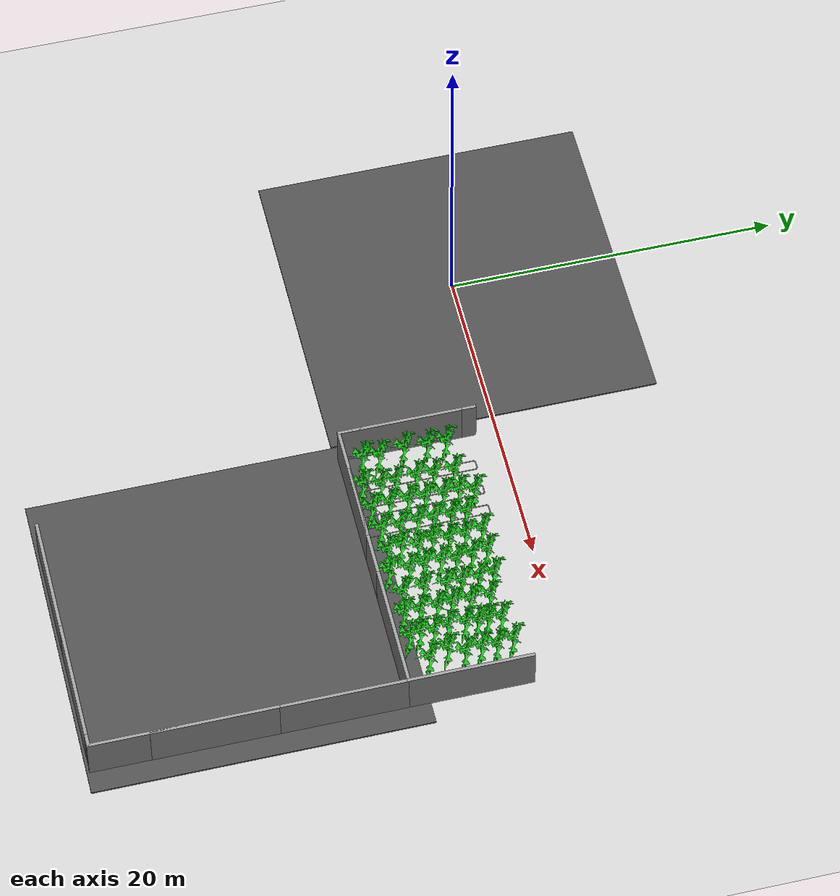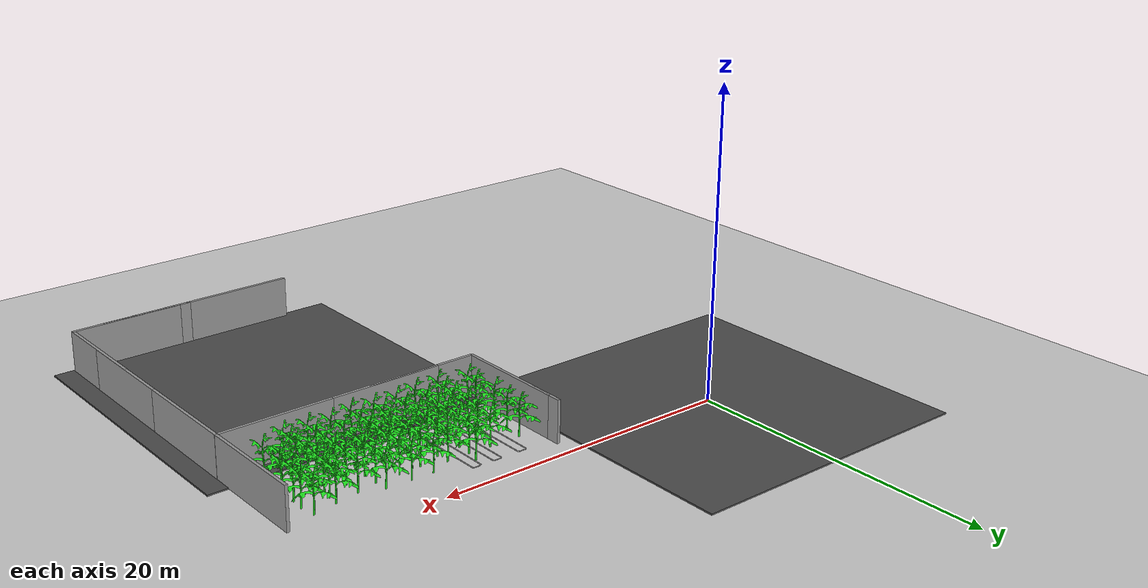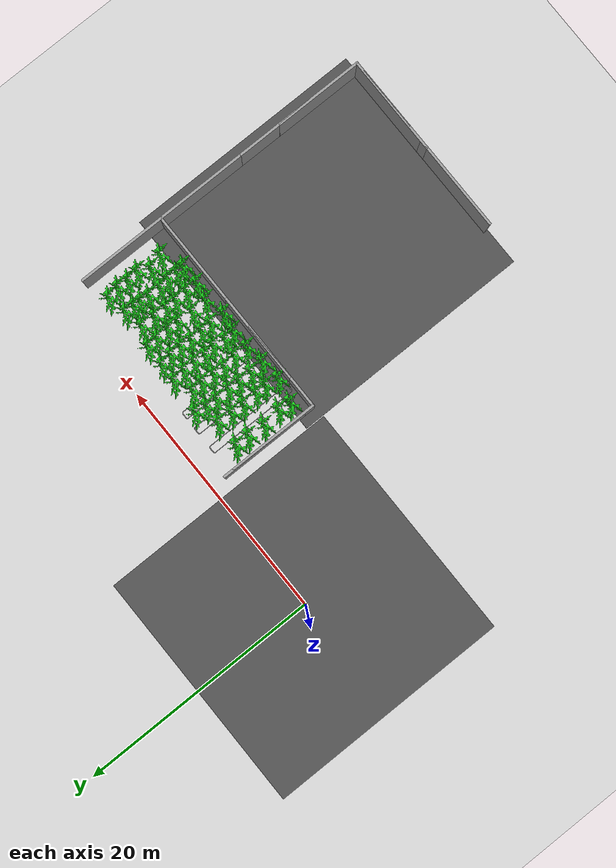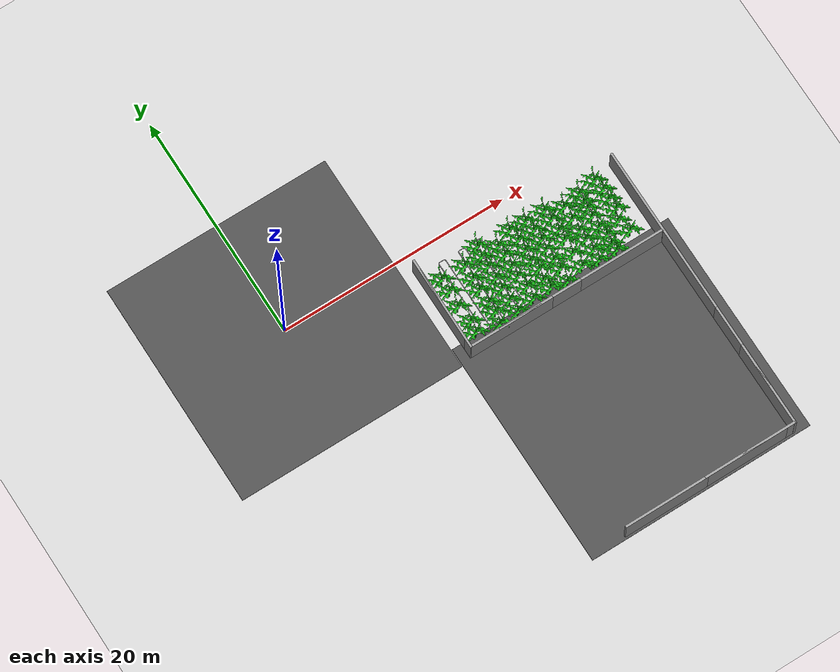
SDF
<sdf version="1.7">
 <world name="default">
  <model name="ground_plane">
   <static>1</static>
   <link name="link">
    <collision name="collision">
     <geometry><plane><normal>0 0 1</normal><size>100 100</size></plane></geometry>
     <surface><friction><ode><mu>100</mu><mu2>50</mu2></ode></friction></surface>
    </collision>
    <visual name="visual">
     <cast_shadows>0</cast_shadows>
     <geometry><plane><normal>0 0 1</normal><size>100 100</size></plane></geometry>
     <material>
      <script><uri>file://media/materials/scripts/gazebo.material</uri><name>Gazebo/Grey</name></script>
     </material>
    </visual>
   </link>
  </model>
  <model name="grey_wall_clone_clone_0_clone">
   <static>1</static>
   <link name="link">
    <pose>0 0 1.4 0 -0 0</pose>
    <collision name="collision"><geometry><box><size>7.5 0.2 2.8</size></box></geometry></collision>
    <visual name="visual">
     <cast_shadows>0</cast_shadows>
     <geometry><box><size>7.5 0.2 2.8</size></box></geometry>
     <material>
      <script>
       <uri>model://grey_wall/materials/scripts</uri>
       <uri>model://grey_wall/materials/textures</uri>
       <name>vrc/grey_wall</name>
      </script>
     </material>
    </visual>
   </link>
   <pose>11 -5.87182 0 0 -0 1.57</pose>
  </model>
  <model name="asphalt_plane">
   <static>1</static>
   <link name="link">
    <collision name="collision"><geometry><box><size>20 20 0.1</size></box></geometry></collision>
    <visual name="visual">
     <cast_shadows>0</cast_shadows>
     <geometry><box><size>20 20 0.1</size></box></geometry>
     <material>
      <script>
       <uri>model://asphalt_plane/materials/scripts</uri>
       <uri>model://asphalt_plane/materials/textures</uri>
       <name>vrc/asphalt</name>
      </script>
     </material>
    </visual>
   </link>
   <pose>0.007662 0.157905 0 0 -0 0</pose>
  </model>
  <model name="asphalt_plane_clone_clone_1">
   <static>1</static>
   <link name="link">
    <collision name="collision"><geometry><box><size>20 20 0.1</size></box></geometry></collision>
    <visual name="visual">
     <cast_shadows>0</cast_shadows>
     <geometry><box><size>20 20 0.1</size></box></geometry>
     <material>
      <script>
       <uri>model://asphalt_plane/materials/scripts</uri>
       <uri>model://asphalt_plane/materials/textures</uri>
       <name>vrc/asphalt</name>
      </script>
     </material>
    </visual>
   </link>
   <pose>20.0847 -18.2729 0 0 -0 0</pose>
  </model>
  <model name="grey_wall_clone_clone_0_clone_clone">
   <static>1</static>
   <link name="link">
    <pose>0 0 1.4 0 -0 0</pose>
    <collision name="collision"><geometry><box><size>7.5 0.2 2.8</size></box></geometry></collision>
    <visual name="visual">
     <cast_shadows>0</cast_shadows>
     <geometry><box><size>7.5 0.2 2.8</size></box></geometry>
     <material>
      <script>
       <uri>model://grey_wall/materials/scripts</uri>
       <uri>model://grey_wall/materials/textures</uri>
       <name>vrc/grey_wall</name>
      </script>
     </material>
    </visual>
   </link>
   <pose>11 -4.99972 0 0 -0 1.57</pose>
  </model>
  <model name="grey_wall_clone_0_clone">
   <static>1</static>
   <link name="link">
    <pose>0 0 1.4 0 -0 0</pose>
    <collision name="collision"><geometry><box><size>7.5 0.2 2.8</size></box></geometry></collision>
    <visual name="visual">
     <cast_shadows>0</cast_shadows>
     <geometry><box><size>7.5 0.2 2.8</size></box></geometry>
     <material>
      <script>
       <uri>model://grey_wall/materials/scripts</uri>
       <uri>model://grey_wall/materials/textures</uri>
       <name>vrc/grey_wall</name>
      </script>
     </material>
    </visual>
   </link>
   <pose>17.3384 -9.5385 0 0 -0 0</pose>
  </model>
  <model name="grey_wall_clone_0_clone_0">
   <static>1</static>
   <link name="link">
    <pose>0 0 1.4 0 -0 0</pose>
    <collision name="collision"><geometry><box><size>7.5 0.2 2.8</size></box></geometry></collision>
    <visual name="visual">
     <cast_shadows>0</cast_shadows>
     <geometry><box><size>7.5 0.2 2.8</size></box></geometry>
     <material>
      <script>
       <uri>model://grey_wall/materials/scripts</uri>
       <uri>model://grey_wall/materials/textures</uri>
       <name>vrc/grey_wall</name>
      </script>
     </material>
    </visual>
   </link>
   <pose>24.8378 -9.53529 0 0 -0 0</pose>
  </model>
  <model name="grey_wall_clone_clone_1_clone_0">
   <static>1</static>
   <link name="link">
    <pose>0 0 1.4 0 -0 0</pose>
    <collision name="collision"><geometry><box><size>7.5 0.2 2.8</size></box></geometry></collision>
    <visual name="visual">
     <cast_shadows>0</cast_shadows>
     <geometry><box><size>7.5 0.2 2.8</size></box></geometry>
     <material>
      <script>
       <uri>model://grey_wall/materials/scripts</uri>
       <uri>model://grey_wall/materials/textures</uri>
       <name>vrc/grey_wall</name>
      </script>
     </material>
    </visual>
   </link>
   <pose>28.6745 -5.89727 0 0 -0 1.57</pose>
  </model>
  <model name="piperail_clone_7_clone">
   <static>1</static>
   <link name="link">
    <collision name="collision">
     <geometry>
      <mesh><scale>0.001 0.001 0.001</scale><uri>model://piperail/meshes/piperail.STL</uri></mesh>
     </geometry>
    </collision>
    <visual name="visual">
     <geometry>
      <mesh><scale>0.001 0.001 0.001</scale><uri>model://piperail/meshes/piperail.STL</uri></mesh>
     </geometry>
    </visual>
   </link>
   <pose>14.7467 -1.74353 0.050452 1.57 -0 0</pose>
  </model>
  <model name="piperail_clone_7_clone_clone">
   <static>1</static>
   <link name="link">
    <collision name="collision">
     <geometry>
      <mesh><scale>0.001 0.001 0.001</scale><uri>model://piperail/meshes/piperail.STL</uri></mesh>
     </geometry>
    </collision>
    <visual name="visual">
     <geometry>
      <mesh><scale>0.001 0.001 0.001</scale><uri>model://piperail/meshes/piperail.STL</uri></mesh>
     </geometry>
    </visual>
   </link>
   <pose>16.1968 -1.75848 0.050452 1.57 -0 0</pose>
  </model>
  <model name="plant_clone_1_clone_23_clone">
   <static>1</static>
   <link name="link">
    <visual name="visual">
     <geometry><mesh><scale>0.01 0.01 0.01</scale><uri>model://plant/meshes/plant.STL</uri></mesh></geometry>
     <material>
      <ambient>0.1 0.8 0.1 1</ambient>
      <diffuse>0.1 0.8 0.1 1</diffuse>
      <specular>0.01 0.01 0.01 1</specular>
      <emissive>0 0 0 1</emissive>
     </material>
    </visual>
   </link>
   <pose>15.0345 -1.71832 0.000845 1.57 -0 0</pose>
  </model>
  <model name="plant_clone_1_clone_23_clone_clone">
   <static>1</static>
   <link name="link">
    <visual name="visual">
     <geometry><mesh><scale>0.01 0.01 0.01</scale><uri>model://plant/meshes/plant.STL</uri></mesh></geometry>
     <material>
      <ambient>0.1 0.8 0.1 1</ambient>
      <diffuse>0.1 0.8 0.1 1</diffuse>
      <specular>0.01 0.01 0.01 1</specular>
      <emissive>0 0 0 1</emissive>
     </material>
    </visual>
   </link>
   <pose>14.8347 -2.63228 0.000845 1.57 -0 0</pose>
  </model>
  <model name="plant_clone_1_clone_23_clone_clone_0">
   <static>1</static>
   <link name="link">
    <visual name="visual">
     <geometry><mesh><scale>0.01 0.01 0.01</scale><uri>model://plant/meshes/plant.STL</uri></mesh></geometry>
     <material>
      <ambient>0.1 0.8 0.1 1</ambient>
      <diffuse>0.1 0.8 0.1 1</diffuse>
      <specular>0.01 0.01 0.01 1</specular>
      <emissive>0 0 0 1</emissive>
     </material>
    </visual>
   </link>
   <pose>14.8072 -3.55643 0.000845 1.57 -0 0</pose>
  </model>
  <model name="plant_clone_1_clone_23_clone_clone_1">
   <static>1</static>
   <link name="link">
    <visual name="visual">
     <geometry><mesh><scale>0.01 0.01 0.01</scale><uri>model://plant/meshes/plant.STL</uri></mesh></geometry>
     <material>
      <ambient>0.1 0.8 0.1 1</ambient>
      <diffuse>0.1 0.8 0.1 1</diffuse>
      <specular>0.01 0.01 0.01 1</specular>
      <emissive>0 0 0 1</emissive>
     </material>
    </visual>
   </link>
   <pose>14.835 -4.67489 0.000845 1.57 -0 0</pose>
  </model>
  <model name="plant_clone_1_clone_23_clone_clone_2">
   <static>1</static>
   <link name="link">
    <visual name="visual">
     <geometry><mesh><scale>0.01 0.01 0.01</scale><uri>model://plant/meshes/plant.STL</uri></mesh></geometry>
     <material>
      <ambient>0.1 0.8 0.1 1</ambient>
      <diffuse>0.1 0.8 0.1 1</diffuse>
      <specular>0.01 0.01 0.01 1</specular>
      <emissive>0 0 0 1</emissive>
     </material>
    </visual>
   </link>
   <pose>14.7605 -5.65428 0.000845 1.57 -0 0</pose>
  </model>
  <model name="plant_clone_1_clone_23_clone_clone_3">
   <static>1</static>
   <link name="link">
    <visual name="visual">
     <geometry><mesh><scale>0.01 0.01 0.01</scale><uri>model://plant/meshes/plant.STL</uri></mesh></geometry>
     <material>
      <ambient>0.1 0.8 0.1 1</ambient>
      <diffuse>0.1 0.8 0.1 1</diffuse>
      <specular>0.01 0.01 0.01 1</specular>
      <emissive>0 0 0 1</emissive>
     </material>
    </visual>
   </link>
   <pose>14.7672 -6.76968 0.000845 1.57 -0 0</pose>
  </model>
  <model name="plant_clone_1_clone_23_clone_clone_4">
   <static>1</static>
   <link name="link">
    <visual name="visual">
     <geometry><mesh><scale>0.01 0.01 0.01</scale><uri>model://plant/meshes/plant.STL</uri></mesh></geometry>
     <material>
      <ambient>0.1 0.8 0.1 1</ambient>
      <diffuse>0.1 0.8 0.1 1</diffuse>
      <specular>0.01 0.01 0.01 1</specular>
      <emissive>0 0 0 1</emissive>
     </material>
    </visual>
   </link>
   <pose>14.8508 -7.86735 0.000845 1.57 -0 0</pose>
  </model>
  <model name="plant_clone_1_clone_23_clone_clone_5">
   <static>1</static>
   <link name="link">
    <visual name="visual">
     <geometry><mesh><scale>0.01 0.01 0.01</scale><uri>model://plant/meshes/plant.STL</uri></mesh></geometry>
     <material>
      <ambient>0.1 0.8 0.1 1</ambient>
      <diffuse>0.1 0.8 0.1 1</diffuse>
      <specular>0.01 0.01 0.01 1</specular>
      <emissive>0 0 0 1</emissive>
     </material>
    </visual>
   </link>
   <pose>13.1094 -7.99755 0.000845 1.57 -0 0</pose>
  </model>
  <model name="plant_clone_1_clone_23_clone_clone_6">
   <static>1</static>
   <link name="link">
    <visual name="visual">
     <geometry><mesh><scale>0.01 0.01 0.01</scale><uri>model://plant/meshes/plant.STL</uri></mesh></geometry>
     <material>
      <ambient>0.1 0.8 0.1 1</ambient>
      <diffuse>0.1 0.8 0.1 1</diffuse>
      <specular>0.01 0.01 0.01 1</specular>
      <emissive>0 0 0 1</emissive>
     </material>
    </visual>
   </link>
   <pose>13.3355 -6.95268 0.000845 1.57 -0 0</pose>
  </model>
  <model name="plant_clone_1_clone_23_clone_clone_7">
   <static>1</static>
   <link name="link">
    <visual name="visual">
     <geometry><mesh><scale>0.01 0.01 0.01</scale><uri>model://plant/meshes/plant.STL</uri></mesh></geometry>
     <material>
      <ambient>0.1 0.8 0.1 1</ambient>
      <diffuse>0.1 0.8 0.1 1</diffuse>
      <specular>0.01 0.01 0.01 1</specular>
      <emissive>0 0 0 1</emissive>
     </material>
    </visual>
   </link>
   <pose>13.3093 -6.07637 0.000845 1.57 -0 0</pose>
  </model>
  <model name="plant_clone_1_clone_23_clone_clone_8">
   <static>1</static>
   <link name="link">
    <visual name="visual">
     <geometry><mesh><scale>0.01 0.01 0.01</scale><uri>model://plant/meshes/plant.STL</uri></mesh></geometry>
     <material>
      <ambient>0.1 0.8 0.1 1</ambient>
      <diffuse>0.1 0.8 0.1 1</diffuse>
      <specular>0.01 0.01 0.01 1</specular>
      <emissive>0 0 0 1</emissive>
     </material>
    </visual>
   </link>
   <pose>13.2413 -4.81861 0.000845 1.57 -0 0</pose>
  </model>
  <model name="plant_clone_1_clone_23_clone_clone_9">
   <static>1</static>
   <link name="link">
    <visual name="visual">
     <geometry><mesh><scale>0.01 0.01 0.01</scale><uri>model://plant/meshes/plant.STL</uri></mesh></geometry>
     <material>
      <ambient>0.1 0.8 0.1 1</ambient>
      <diffuse>0.1 0.8 0.1 1</diffuse>
      <specular>0.01 0.01 0.01 1</specular>
      <emissive>0 0 0 1</emissive>
     </material>
    </visual>
   </link>
   <pose>13.3188 -3.77274 0.000845 1.57 -0 0</pose>
  </model>
  <model name="plant_clone_1_clone_23_clone_clone_10">
   <static>1</static>
   <link name="link">
    <visual name="visual">
     <geometry><mesh><scale>0.01 0.01 0.01</scale><uri>model://plant/meshes/plant.STL</uri></mesh></geometry>
     <material>
      <ambient>0.1 0.8 0.1 1</ambient>
      <diffuse>0.1 0.8 0.1 1</diffuse>
      <specular>0.01 0.01 0.01 1</specular>
      <emissive>0 0 0 1</emissive>
     </material>
    </visual>
   </link>
   <pose>13.3512 -2.55248 0.000845 1.57 -0 0</pose>
  </model>
  <model name="plant_clone_1_clone_23_clone_clone_13">
   <static>1</static>
   <link name="link">
    <visual name="visual">
     <geometry><mesh><scale>0.01 0.01 0.01</scale><uri>model://plant/meshes/plant.STL</uri></mesh></geometry>
     <material>
      <ambient>0.1 0.8 0.1 1</ambient>
      <diffuse>0.1 0.8 0.1 1</diffuse>
      <specular>0.01 0.01 0.01 1</specular>
      <emissive>0 0 0 1</emissive>
     </material>
    </visual>
   </link>
   <pose>16.3811 -2.58962 0.000845 1.57 -0 0</pose>
  </model>
  <model name="plant_clone_1_clone_23_clone_clone_14">
   <static>1</static>
   <link name="link">
    <visual name="visual">
     <geometry><mesh><scale>0.01 0.01 0.01</scale><uri>model://plant/meshes/plant.STL</uri></mesh></geometry>
     <material>
      <ambient>0.1 0.8 0.1 1</ambient>
      <diffuse>0.1 0.8 0.1 1</diffuse>
      <specular>0.01 0.01 0.01 1</specular>
      <emissive>0 0 0 1</emissive>
     </material>
    </visual>
   </link>
   <pose>16.438 -3.48412 0.000845 1.57 -0 0</pose>
  </model>
  <model name="plant_clone_1_clone_23_clone_clone_15">
   <static>1</static>
   <link name="link">
    <visual name="visual">
     <geometry><mesh><scale>0.01 0.01 0.01</scale><uri>model://plant/meshes/plant.STL</uri></mesh></geometry>
     <material>
      <ambient>0.1 0.8 0.1 1</ambient>
      <diffuse>0.1 0.8 0.1 1</diffuse>
      <specular>0.01 0.01 0.01 1</specular>
      <emissive>0 0 0 1</emissive>
     </material>
    </visual>
   </link>
   <pose>16.3862 -4.54463 0.000845 1.57 -0 0</pose>
  </model>
  <model name="plant_clone_1_clone_23_clone_clone_16">
   <static>1</static>
   <link name="link">
    <visual name="visual">
     <geometry><mesh><scale>0.01 0.01 0.01</scale><uri>model://plant/meshes/plant.STL</uri></mesh></geometry>
     <material>
      <ambient>0.1 0.8 0.1 1</ambient>
      <diffuse>0.1 0.8 0.1 1</diffuse>
      <specular>0.01 0.01 0.01 1</specular>
      <emissive>0 0 0 1</emissive>
     </material>
    </visual>
   </link>
   <pose>16.3138 -5.47548 0.000845 1.57 -0 0</pose>
  </model>
  <model name="plant_clone_1_clone_23_clone_clone_17">
   <static>1</static>
   <link name="link">
    <visual name="visual">
     <geometry><mesh><scale>0.01 0.01 0.01</scale><uri>model://plant/meshes/plant.STL</uri></mesh></geometry>
     <material>
      <ambient>0.1 0.8 0.1 1</ambient>
      <diffuse>0.1 0.8 0.1 1</diffuse>
      <specular>0.01 0.01 0.01 1</specular>
      <emissive>0 0 0 1</emissive>
     </material>
    </visual>
   </link>
   <pose>16.4837 -6.56236 0.000845 1.57 -0 0</pose>
  </model>
  <model name="plant_clone_1_clone_23_clone_clone_18">
   <static>1</static>
   <link name="link">
    <visual name="visual">
     <geometry><mesh><scale>0.01 0.01 0.01</scale><uri>model://plant/meshes/plant.STL</uri></mesh></geometry>
     <material>
      <ambient>0.1 0.8 0.1 1</ambient>
      <diffuse>0.1 0.8 0.1 1</diffuse>
      <specular>0.01 0.01 0.01 1</specular>
      <emissive>0 0 0 1</emissive>
     </material>
    </visual>
   </link>
   <pose>16.3757 -7.64393 0.000845 1.57 -0 0</pose>
  </model>
  <model name="plant_clone_1_clone_23_clone_clone_19">
   <static>1</static>
   <link name="link">
    <visual name="visual">
     <geometry><mesh><scale>0.01 0.01 0.01</scale><uri>model://plant/meshes/plant.STL</uri></mesh></geometry>
     <material>
      <ambient>0.1 0.8 0.1 1</ambient>
      <diffuse>0.1 0.8 0.1 1</diffuse>
      <specular>0.01 0.01 0.01 1</specular>
      <emissive>0 0 0 1</emissive>
     </material>
    </visual>
   </link>
   <pose>17.9675 -7.64081 0.000845 1.57 -0 0</pose>
  </model>
  <model name="plant_clone_1_clone_23_clone_clone_20">
   <static>1</static>
   <link name="link">
    <visual name="visual">
     <geometry><mesh><scale>0.01 0.01 0.01</scale><uri>model://plant/meshes/plant.STL</uri></mesh></geometry>
     <material>
      <ambient>0.1 0.8 0.1 1</ambient>
      <diffuse>0.1 0.8 0.1 1</diffuse>
      <specular>0.01 0.01 0.01 1</specular>
      <emissive>0 0 0 1</emissive>
     </material>
    </visual>
   </link>
   <pose>17.8319 -6.80083 0.000845 1.57 -0 0</pose>
  </model>
  <model name="plant_clone_1_clone_23_clone_clone_21">
   <static>1</static>
   <link name="link">
    <visual name="visual">
     <geometry><mesh><scale>0.01 0.01 0.01</scale><uri>model://plant/meshes/plant.STL</uri></mesh></geometry>
     <material>
      <ambient>0.1 0.8 0.1 1</ambient>
      <diffuse>0.1 0.8 0.1 1</diffuse>
      <specular>0.01 0.01 0.01 1</specular>
      <emissive>0 0 0 1</emissive>
     </material>
    </visual>
   </link>
   <pose>18.0822 -5.84557 0.000845 1.57 -0 0</pose>
  </model>
  <model name="plant_clone_1_clone_23_clone_clone_22">
   <static>1</static>
   <link name="link">
    <visual name="visual">
     <geometry><mesh><scale>0.01 0.01 0.01</scale><uri>model://plant/meshes/plant.STL</uri></mesh></geometry>
     <material>
      <ambient>0.1 0.8 0.1 1</ambient>
      <diffuse>0.1 0.8 0.1 1</diffuse>
      <specular>0.01 0.01 0.01 1</specular>
      <emissive>0 0 0 1</emissive>
     </material>
    </visual>
   </link>
   <pose>17.8428 -4.94116 0.000845 1.57 -0 0</pose>
  </model>
  <model name="plant_clone_1_clone_23_clone_clone_23">
   <static>1</static>
   <link name="link">
    <visual name="visual">
     <geometry><mesh><scale>0.01 0.01 0.01</scale><uri>model://plant/meshes/plant.STL</uri></mesh></geometry>
     <material>
      <ambient>0.1 0.8 0.1 1</ambient>
      <diffuse>0.1 0.8 0.1 1</diffuse>
      <specular>0.01 0.01 0.01 1</specular>
      <emissive>0 0 0 1</emissive>
     </material>
    </visual>
   </link>
   <pose>17.9831 -3.99788 0.000845 1.57 -0 0</pose>
  </model>
  <model name="plant_clone_1_clone_23_clone_clone_24">
   <static>1</static>
   <link name="link">
    <visual name="visual">
     <geometry><mesh><scale>0.01 0.01 0.01</scale><uri>model://plant/meshes/plant.STL</uri></mesh></geometry>
     <material>
      <ambient>0.1 0.8 0.1 1</ambient>
      <diffuse>0.1 0.8 0.1 1</diffuse>
      <specular>0.01 0.01 0.01 1</specular>
      <emissive>0 0 0 1</emissive>
     </material>
    </visual>
   </link>
   <pose>17.9697 -3.01201 0.000845 1.57 -0 0</pose>
  </model>
  <model name="plant_clone_1_clone_23_clone_clone_25">
   <static>1</static>
   <link name="link">
    <visual name="visual">
     <geometry><mesh><scale>0.01 0.01 0.01</scale><uri>model://plant/meshes/plant.STL</uri></mesh></geometry>
     <material>
      <ambient>0.1 0.8 0.1 1</ambient>
      <diffuse>0.1 0.8 0.1 1</diffuse>
      <specular>0.01 0.01 0.01 1</specular>
      <emissive>0 0 0 1</emissive>
     </material>
    </visual>
   </link>
   <pose>17.8171 -1.96745 0.000845 1.57 -0 0</pose>
  </model>
  <model name="plant_clone_1_clone_23_clone_clone_28">
   <static>1</static>
   <link name="link">
    <visual name="visual">
     <geometry><mesh><scale>0.01 0.01 0.01</scale><uri>model://plant/meshes/plant.STL</uri></mesh></geometry>
     <material>
      <ambient>0.1 0.8 0.1 1</ambient>
      <diffuse>0.1 0.8 0.1 1</diffuse>
      <specular>0.01 0.01 0.01 1</specular>
      <emissive>0 0 0 1</emissive>
     </material>
    </visual>
   </link>
   <pose>19.275 -2.02314 0.000845 1.57 -0 0</pose>
  </model>
  <model name="plant_clone_1_clone_23_clone_clone_29">
   <static>1</static>
   <link name="link">
    <visual name="visual">
     <geometry><mesh><scale>0.01 0.01 0.01</scale><uri>model://plant/meshes/plant.STL</uri></mesh></geometry>
     <material>
      <ambient>0.1 0.8 0.1 1</ambient>
      <diffuse>0.1 0.8 0.1 1</diffuse>
      <specular>0.01 0.01 0.01 1</specular>
      <emissive>0 0 0 1</emissive>
     </material>
    </visual>
   </link>
   <pose>19.4403 -2.96975 0.000845 1.57 -0 0</pose>
  </model>
  <model name="plant_clone_1_clone_23_clone_clone_30">
   <static>1</static>
   <link name="link">
    <visual name="visual">
     <geometry><mesh><scale>0.01 0.01 0.01</scale><uri>model://plant/meshes/plant.STL</uri></mesh></geometry>
     <material>
      <ambient>0.1 0.8 0.1 1</ambient>
      <diffuse>0.1 0.8 0.1 1</diffuse>
      <specular>0.01 0.01 0.01 1</specular>
      <emissive>0 0 0 1</emissive>
     </material>
    </visual>
   </link>
   <pose>19.5145 -3.92871 0.000845 1.57 -0 0</pose>
  </model>
  <model name="plant_clone_1_clone_23_clone_clone_31">
   <static>1</static>
   <link name="link">
    <visual name="visual">
     <geometry><mesh><scale>0.01 0.01 0.01</scale><uri>model://plant/meshes/plant.STL</uri></mesh></geometry>
     <material>
      <ambient>0.1 0.8 0.1 1</ambient>
      <diffuse>0.1 0.8 0.1 1</diffuse>
      <specular>0.01 0.01 0.01 1</specular>
      <emissive>0 0 0 1</emissive>
     </material>
    </visual>
   </link>
   <pose>19.369 -4.82034 0.000845 1.57 -0 0</pose>
  </model>
  <model name="plant_clone_1_clone_23_clone_clone_32">
   <static>1</static>
   <link name="link">
    <visual name="visual">
     <geometry><mesh><scale>0.01 0.01 0.01</scale><uri>model://plant/meshes/plant.STL</uri></mesh></geometry>
     <material>
      <ambient>0.1 0.8 0.1 1</ambient>
      <diffuse>0.1 0.8 0.1 1</diffuse>
      <specular>0.01 0.01 0.01 1</specular>
      <emissive>0 0 0 1</emissive>
     </material>
    </visual>
   </link>
   <pose>19.4063 -5.84118 0.000845 1.57 -0 0</pose>
  </model>
  <model name="plant_clone_1_clone_23_clone_clone_33">
   <static>1</static>
   <link name="link">
    <visual name="visual">
     <geometry><mesh><scale>0.01 0.01 0.01</scale><uri>model://plant/meshes/plant.STL</uri></mesh></geometry>
     <material>
      <ambient>0.1 0.8 0.1 1</ambient>
      <diffuse>0.1 0.8 0.1 1</diffuse>
      <specular>0.01 0.01 0.01 1</specular>
      <emissive>0 0 0 1</emissive>
     </material>
    </visual>
   </link>
   <pose>19.4719 -6.71497 0.000845 1.57 -0 0</pose>
  </model>
  <model name="plant_clone_1_clone_23_clone_clone_34">
   <static>1</static>
   <link name="link">
    <visual name="visual">
     <geometry><mesh><scale>0.01 0.01 0.01</scale><uri>model://plant/meshes/plant.STL</uri></mesh></geometry>
     <material>
      <ambient>0.1 0.8 0.1 1</ambient>
      <diffuse>0.1 0.8 0.1 1</diffuse>
      <specular>0.01 0.01 0.01 1</specular>
      <emissive>0 0 0 1</emissive>
     </material>
    </visual>
   </link>
   <pose>19.3918 -7.89133 0.000845 1.57 -0 0</pose>
  </model>
  <model name="plant_clone_1_clone_23_clone_clone_36">
   <static>1</static>
   <link name="link">
    <visual name="visual">
     <geometry><mesh><scale>0.01 0.01 0.01</scale><uri>model://plant/meshes/plant.STL</uri></mesh></geometry>
     <material>
      <ambient>0.1 0.8 0.1 1</ambient>
      <diffuse>0.1 0.8 0.1 1</diffuse>
      <specular>0.01 0.01 0.01 1</specular>
      <emissive>0 0 0 1</emissive>
     </material>
    </visual>
   </link>
   <pose>20.9576 -2.07419 0.000845 1.57 -0 0</pose>
  </model>
  <model name="plant_clone_1_clone_23_clone_clone_37">
   <static>1</static>
   <link name="link">
    <visual name="visual">
     <geometry><mesh><scale>0.01 0.01 0.01</scale><uri>model://plant/meshes/plant.STL</uri></mesh></geometry>
     <material>
      <ambient>0.1 0.8 0.1 1</ambient>
      <diffuse>0.1 0.8 0.1 1</diffuse>
      <specular>0.01 0.01 0.01 1</specular>
      <emissive>0 0 0 1</emissive>
     </material>
    </visual>
   </link>
   <pose>21.0407 -2.97208 0.000845 1.57 -0 0</pose>
  </model>
  <model name="plant_clone_1_clone_23_clone_clone_38">
   <static>1</static>
   <link name="link">
    <visual name="visual">
     <geometry><mesh><scale>0.01 0.01 0.01</scale><uri>model://plant/meshes/plant.STL</uri></mesh></geometry>
     <material>
      <ambient>0.1 0.8 0.1 1</ambient>
      <diffuse>0.1 0.8 0.1 1</diffuse>
      <specular>0.01 0.01 0.01 1</specular>
      <emissive>0 0 0 1</emissive>
     </material>
    </visual>
   </link>
   <pose>21.0829 -4.00539 0.000845 1.57 -0 0</pose>
  </model>
  <model name="plant_clone_1_clone_23_clone_clone_39">
   <static>1</static>
   <link name="link">
    <visual name="visual">
     <geometry><mesh><scale>0.01 0.01 0.01</scale><uri>model://plant/meshes/plant.STL</uri></mesh></geometry>
     <material>
      <ambient>0.1 0.8 0.1 1</ambient>
      <diffuse>0.1 0.8 0.1 1</diffuse>
      <specular>0.01 0.01 0.01 1</specular>
      <emissive>0 0 0 1</emissive>
     </material>
    </visual>
   </link>
   <pose>21.0221 -4.90364 0.000845 1.57 -0 0</pose>
  </model>
  <model name="plant_clone_1_clone_23_clone_clone_40">
   <static>1</static>
   <link name="link">
    <visual name="visual">
     <geometry><mesh><scale>0.01 0.01 0.01</scale><uri>model://plant/meshes/plant.STL</uri></mesh></geometry>
     <material>
      <ambient>0.1 0.8 0.1 1</ambient>
      <diffuse>0.1 0.8 0.1 1</diffuse>
      <specular>0.01 0.01 0.01 1</specular>
      <emissive>0 0 0 1</emissive>
     </material>
    </visual>
   </link>
   <pose>20.9429 -6.19031 0.000845 1.57 -0 0</pose>
  </model>
  <model name="plant_clone_1_clone_23_clone_clone_41">
   <static>1</static>
   <link name="link">
    <visual name="visual">
     <geometry><mesh><scale>0.01 0.01 0.01</scale><uri>model://plant/meshes/plant.STL</uri></mesh></geometry>
     <material>
      <ambient>0.1 0.8 0.1 1</ambient>
      <diffuse>0.1 0.8 0.1 1</diffuse>
      <specular>0.01 0.01 0.01 1</specular>
      <emissive>0 0 0 1</emissive>
     </material>
    </visual>
   </link>
   <pose>21.004 -7.47698 0.000845 1.57 -0 0</pose>
  </model>
  <model name="plant_clone_1_clone_23_clone_clone_42">
   <static>1</static>
   <link name="link">
    <visual name="visual">
     <geometry><mesh><scale>0.01 0.01 0.01</scale><uri>model://plant/meshes/plant.STL</uri></mesh></geometry>
     <material>
      <ambient>0.1 0.8 0.1 1</ambient>
      <diffuse>0.1 0.8 0.1 1</diffuse>
      <specular>0.01 0.01 0.01 1</specular>
      <emissive>0 0 0 1</emissive>
     </material>
    </visual>
   </link>
   <pose>22.4009 -7.74489 0.000845 1.57 -0 0</pose>
  </model>
  <model name="plant_clone_1_clone_23_clone_clone_43">
   <static>1</static>
   <link name="link">
    <visual name="visual">
     <geometry><mesh><scale>0.01 0.01 0.01</scale><uri>model://plant/meshes/plant.STL</uri></mesh></geometry>
     <material>
      <ambient>0.1 0.8 0.1 1</ambient>
      <diffuse>0.1 0.8 0.1 1</diffuse>
      <specular>0.01 0.01 0.01 1</specular>
      <emissive>0 0 0 1</emissive>
     </material>
    </visual>
   </link>
   <pose>22.429 -6.81556 0.000845 1.57 -0 0</pose>
  </model>
  <model name="plant_clone_1_clone_23_clone_clone_44">
   <static>1</static>
   <link name="link">
    <visual name="visual">
     <geometry><mesh><scale>0.01 0.01 0.01</scale><uri>model://plant/meshes/plant.STL</uri></mesh></geometry>
     <material>
      <ambient>0.1 0.8 0.1 1</ambient>
      <diffuse>0.1 0.8 0.1 1</diffuse>
      <specular>0.01 0.01 0.01 1</specular>
      <emissive>0 0 0 1</emissive>
     </material>
    </visual>
   </link>
   <pose>22.3925 -5.76796 0.000845 1.57 -0 0</pose>
  </model>
  <model name="plant_clone_1_clone_23_clone_clone_45">
   <static>1</static>
   <link name="link">
    <visual name="visual">
     <geometry><mesh><scale>0.01 0.01 0.01</scale><uri>model://plant/meshes/plant.STL</uri></mesh></geometry>
     <material>
      <ambient>0.1 0.8 0.1 1</ambient>
      <diffuse>0.1 0.8 0.1 1</diffuse>
      <specular>0.01 0.01 0.01 1</specular>
      <emissive>0 0 0 1</emissive>
     </material>
    </visual>
   </link>
   <pose>22.3768 -4.90709 0.000845 1.57 -0 0</pose>
  </model>
  <model name="plant_clone_1_clone_23_clone_clone_46">
   <static>1</static>
   <link name="link">
    <visual name="visual">
     <geometry><mesh><scale>0.01 0.01 0.01</scale><uri>model://plant/meshes/plant.STL</uri></mesh></geometry>
     <material>
      <ambient>0.1 0.8 0.1 1</ambient>
      <diffuse>0.1 0.8 0.1 1</diffuse>
      <specular>0.01 0.01 0.01 1</specular>
      <emissive>0 0 0 1</emissive>
     </material>
    </visual>
   </link>
   <pose>22.4181 -3.81062 0.000845 1.57 -0 0</pose>
  </model>
  <model name="plant_clone_1_clone_23_clone_clone_47">
   <static>1</static>
   <link name="link">
    <visual name="visual">
     <geometry><mesh><scale>0.01 0.01 0.01</scale><uri>model://plant/meshes/plant.STL</uri></mesh></geometry>
     <material>
      <ambient>0.1 0.8 0.1 1</ambient>
      <diffuse>0.1 0.8 0.1 1</diffuse>
      <specular>0.01 0.01 0.01 1</specular>
      <emissive>0 0 0 1</emissive>
     </material>
    </visual>
   </link>
   <pose>22.4264 -2.64611 0.000845 1.57 -0 0</pose>
  </model>
  <model name="plant_clone_1_clone_23_clone_clone_49">
   <static>1</static>
   <link name="link">
    <visual name="visual">
     <geometry><mesh><scale>0.01 0.01 0.01</scale><uri>model://plant/meshes/plant.STL</uri></mesh></geometry>
     <material>
      <ambient>0.1 0.8 0.1 1</ambient>
      <diffuse>0.1 0.8 0.1 1</diffuse>
      <specular>0.01 0.01 0.01 1</specular>
      <emissive>0 0 0 1</emissive>
     </material>
    </visual>
   </link>
   <pose>24.0064 -7.78071 0.000845 1.57 -0 0</pose>
  </model>
  <model name="plant_clone_1_clone_23_clone_clone_50">
   <static>1</static>
   <link name="link">
    <visual name="visual">
     <geometry><mesh><scale>0.01 0.01 0.01</scale><uri>model://plant/meshes/plant.STL</uri></mesh></geometry>
     <material>
      <ambient>0.1 0.8 0.1 1</ambient>
      <diffuse>0.1 0.8 0.1 1</diffuse>
      <specular>0.01 0.01 0.01 1</specular>
      <emissive>0 0 0 1</emissive>
     </material>
    </visual>
   </link>
   <pose>23.915 -7.13841 0.000845 1.57 -0 0</pose>
  </model>
  <model name="plant_clone_1_clone_23_clone_clone_51">
   <static>1</static>
   <link name="link">
    <visual name="visual">
     <geometry><mesh><scale>0.01 0.01 0.01</scale><uri>model://plant/meshes/plant.STL</uri></mesh></geometry>
     <material>
      <ambient>0.1 0.8 0.1 1</ambient>
      <diffuse>0.1 0.8 0.1 1</diffuse>
      <specular>0.01 0.01 0.01 1</specular>
      <emissive>0 0 0 1</emissive>
     </material>
    </visual>
   </link>
   <pose>24.0158 -6.3444 0.000845 1.57 -0 0</pose>
  </model>
  <model name="plant_clone_1_clone_23_clone_clone_52">
   <static>1</static>
   <link name="link">
    <visual name="visual">
     <geometry><mesh><scale>0.01 0.01 0.01</scale><uri>model://plant/meshes/plant.STL</uri></mesh></geometry>
     <material>
      <ambient>0.1 0.8 0.1 1</ambient>
      <diffuse>0.1 0.8 0.1 1</diffuse>
      <specular>0.01 0.01 0.01 1</specular>
      <emissive>0 0 0 1</emissive>
     </material>
    </visual>
   </link>
   <pose>23.8261 -5.49565 0.000845 1.57 -0 0</pose>
  </model>
  <model name="plant_clone_1_clone_23_clone_clone_53">
   <static>1</static>
   <link name="link">
    <visual name="visual">
     <geometry><mesh><scale>0.01 0.01 0.01</scale><uri>model://plant/meshes/plant.STL</uri></mesh></geometry>
     <material>
      <ambient>0.1 0.8 0.1 1</ambient>
      <diffuse>0.1 0.8 0.1 1</diffuse>
      <specular>0.01 0.01 0.01 1</specular>
      <emissive>0 0 0 1</emissive>
     </material>
    </visual>
   </link>
   <pose>23.8498 -4.45153 0.000845 1.57 -0 0</pose>
  </model>
  <model name="plant_clone_1_clone_23_clone_clone_54">
   <static>1</static>
   <link name="link">
    <visual name="visual">
     <geometry><mesh><scale>0.01 0.01 0.01</scale><uri>model://plant/meshes/plant.STL</uri></mesh></geometry>
     <material>
      <ambient>0.1 0.8 0.1 1</ambient>
      <diffuse>0.1 0.8 0.1 1</diffuse>
      <specular>0.01 0.01 0.01 1</specular>
      <emissive>0 0 0 1</emissive>
     </material>
    </visual>
   </link>
   <pose>23.9135 -3.72682 0.000845 1.57 -0 0</pose>
  </model>
  <model name="plant_clone_1_clone_23_clone_clone_55">
   <static>1</static>
   <link name="link">
    <visual name="visual">
     <geometry><mesh><scale>0.01 0.01 0.01</scale><uri>model://plant/meshes/plant.STL</uri></mesh></geometry>
     <material>
      <ambient>0.1 0.8 0.1 1</ambient>
      <diffuse>0.1 0.8 0.1 1</diffuse>
      <specular>0.01 0.01 0.01 1</specular>
      <emissive>0 0 0 1</emissive>
     </material>
    </visual>
   </link>
   <pose>23.9485 -3.1364 0.000845 1.57 -0 0</pose>
  </model>
  <model name="plant_clone_1_clone_23_clone_clone_56">
   <static>1</static>
   <link name="link">
    <visual name="visual">
     <geometry><mesh><scale>0.01 0.01 0.01</scale><uri>model://plant/meshes/plant.STL</uri></mesh></geometry>
     <material>
      <ambient>0.1 0.8 0.1 1</ambient>
      <diffuse>0.1 0.8 0.1 1</diffuse>
      <specular>0.01 0.01 0.01 1</specular>
      <emissive>0 0 0 1</emissive>
     </material>
    </visual>
   </link>
   <pose>24.0318 -2.36788 0.000845 1.57 -0 0</pose>
  </model>
  <model name="plant_clone_1_clone_23_clone_clone_59">
   <static>1</static>
   <link name="link">
    <visual name="visual">
     <geometry><mesh><scale>0.01 0.01 0.01</scale><uri>model://plant/meshes/plant.STL</uri></mesh></geometry>
     <material>
      <ambient>0.1 0.8 0.1 1</ambient>
      <diffuse>0.1 0.8 0.1 1</diffuse>
      <specular>0.01 0.01 0.01 1</specular>
      <emissive>0 0 0 1</emissive>
     </material>
    </visual>
   </link>
   <pose>25.6087 -2.06913 0.000845 1.57 -0 0</pose>
  </model>
  <model name="plant_clone_1_clone_23_clone_clone_60">
   <static>1</static>
   <link name="link">
    <visual name="visual">
     <geometry><mesh><scale>0.01 0.01 0.01</scale><uri>model://plant/meshes/plant.STL</uri></mesh></geometry>
     <material>
      <ambient>0.1 0.8 0.1 1</ambient>
      <diffuse>0.1 0.8 0.1 1</diffuse>
      <specular>0.01 0.01 0.01 1</specular>
      <emissive>0 0 0 1</emissive>
     </material>
    </visual>
   </link>
   <pose>25.7942 -3.05843 0.000845 1.57 -0 0</pose>
  </model>
  <model name="plant_clone_1_clone_23_clone_clone_61">
   <static>1</static>
   <link name="link">
    <visual name="visual">
     <geometry><mesh><scale>0.01 0.01 0.01</scale><uri>model://plant/meshes/plant.STL</uri></mesh></geometry>
     <material>
      <ambient>0.1 0.8 0.1 1</ambient>
      <diffuse>0.1 0.8 0.1 1</diffuse>
      <specular>0.01 0.01 0.01 1</specular>
      <emissive>0 0 0 1</emissive>
     </material>
    </visual>
   </link>
   <pose>25.7148 -3.95859 0.000845 1.57 -0 0</pose>
  </model>
  <model name="plant_clone_1_clone_23_clone_clone_62">
   <static>1</static>
   <link name="link">
    <visual name="visual">
     <geometry><mesh><scale>0.01 0.01 0.01</scale><uri>model://plant/meshes/plant.STL</uri></mesh></geometry>
     <material>
      <ambient>0.1 0.8 0.1 1</ambient>
      <diffuse>0.1 0.8 0.1 1</diffuse>
      <specular>0.01 0.01 0.01 1</specular>
      <emissive>0 0 0 1</emissive>
     </material>
    </visual>
   </link>
   <pose>25.8135 -4.92068 0.000845 1.57 -0 0</pose>
  </model>
  <model name="plant_clone_1_clone_23_clone_clone_63">
   <static>1</static>
   <link name="link">
    <visual name="visual">
     <geometry><mesh><scale>0.01 0.01 0.01</scale><uri>model://plant/meshes/plant.STL</uri></mesh></geometry>
     <material>
      <ambient>0.1 0.8 0.1 1</ambient>
      <diffuse>0.1 0.8 0.1 1</diffuse>
      <specular>0.01 0.01 0.01 1</specular>
      <emissive>0 0 0 1</emissive>
     </material>
    </visual>
   </link>
   <pose>25.3531 -5.84048 0.000845 1.57 -0 0</pose>
  </model>
  <model name="plant_clone_1_clone_23_clone_clone_64">
   <static>1</static>
   <link name="link">
    <visual name="visual">
     <geometry><mesh><scale>0.01 0.01 0.01</scale><uri>model://plant/meshes/plant.STL</uri></mesh></geometry>
     <material>
      <ambient>0.1 0.8 0.1 1</ambient>
      <diffuse>0.1 0.8 0.1 1</diffuse>
      <specular>0.01 0.01 0.01 1</specular>
      <emissive>0 0 0 1</emissive>
     </material>
    </visual>
   </link>
   <pose>25.7423 -7.01046 0.000845 1.57 -0 0</pose>
  </model>
  <model name="grey_wall_clone_0_clone_clone">
   <static>1</static>
   <link name="link">
    <pose>0 0 1.4 0 -0 0</pose>
    <collision name="collision"><geometry><box><size>7.5 0.2 2.8</size></box></geometry></collision>
    <visual name="visual">
     <cast_shadows>0</cast_shadows>
     <geometry><box><size>7.5 0.2 2.8</size></box></geometry>
     <material>
      <script>
       <uri>model://grey_wall/materials/scripts</uri>
       <uri>model://grey_wall/materials/textures</uri>
       <name>vrc/grey_wall</name>
      </script>
     </material>
    </visual>
   </link>
   <pose>14.7216 -9.53944 0 0 -0 0</pose>
  </model>
  <model name="grey_wall_clone_5">
   <static>1</static>
   <link name="link">
    <pose>0 0 1.4 0 -0 0</pose>
    <collision name="collision"><geometry><box><size>7.5 0.2 2.8</size></box></geometry></collision>
    <visual name="visual">
     <cast_shadows>0</cast_shadows>
     <geometry><box><size>7.5 0.2 2.8</size></box></geometry>
     <material>
      <script>
       <uri>model://grey_wall/materials/scripts</uri>
       <uri>model://grey_wall/materials/textures</uri>
       <name>vrc/grey_wall</name>
      </script>
     </material>
    </visual>
   </link>
   <pose>16.9262 -27.999 0 0 -0 0</pose>
  </model>
  <model name="grey_wall_clone_6">
   <static>1</static>
   <link name="link">
    <pose>0 0 1.4 0 -0 0</pose>
    <collision name="collision"><geometry><box><size>7.5 0.2 2.8</size></box></geometry></collision>
    <visual name="visual">
     <cast_shadows>0</cast_shadows>
     <geometry><box><size>7.5 0.2 2.8</size></box></geometry>
     <material>
      <script>
       <uri>model://grey_wall/materials/scripts</uri>
       <uri>model://grey_wall/materials/textures</uri>
       <name>vrc/grey_wall</name>
      </script>
     </material>
    </visual>
   </link>
   <pose>24.183 -27.9943 0 0 -0 0</pose>
  </model>
  <model name="grey_wall_clone_clone_1_clone_0_clone">
   <static>1</static>
   <link name="link">
    <pose>0 0 1.4 0 -0 0</pose>
    <collision name="collision"><geometry><box><size>7.5 0.2 2.8</size></box></geometry></collision>
    <visual name="visual">
     <cast_shadows>0</cast_shadows>
     <geometry><box><size>7.5 0.2 2.8</size></box></geometry>
     <material>
      <script>
       <uri>model://grey_wall/materials/scripts</uri>
       <uri>model://grey_wall/materials/textures</uri>
       <name>vrc/grey_wall</name>
      </script>
     </material>
    </visual>
   </link>
   <pose>28.6778 -13.2853 0 0 -0 1.57</pose>
  </model>
  <model name="grey_wall_clone_clone_1_clone_0_clone_0">
   <static>1</static>
   <link name="link">
    <pose>0 0 1.4 0 -0 0</pose>
    <collision name="collision"><geometry><box><size>7.5 0.2 2.8</size></box></geometry></collision>
    <visual name="visual">
     <cast_shadows>0</cast_shadows>
     <geometry><box><size>7.5 0.2 2.8</size></box></geometry>
     <material>
      <script>
       <uri>model://grey_wall/materials/scripts</uri>
       <uri>model://grey_wall/materials/textures</uri>
       <name>vrc/grey_wall</name>
      </script>
     </material>
    </visual>
   </link>
   <pose>28.6709 -20.7461 0 0 -0 1.57</pose>
  </model>
  <model name="grey_wall_clone_clone_1_clone_0_clone_1">
   <static>1</static>
   <link name="link">
    <pose>0 0 1.4 0 -0 0</pose>
    <collision name="collision"><geometry><box><size>7.5 0.2 2.8</size></box></geometry></collision>
    <visual name="visual">
     <cast_shadows>0</cast_shadows>
     <geometry><box><size>7.5 0.2 2.8</size></box></geometry>
     <material>
      <script>
       <uri>model://grey_wall/materials/scripts</uri>
       <uri>model://grey_wall/materials/textures</uri>
       <name>vrc/grey_wall</name>
      </script>
     </material>
    </visual>
   </link>
   <pose>28.6598 -24.3602 0 0 -0 1.57</pose>
  </model>
  <model name="grey_wall_clone_6_clone">
   <static>1</static>
   <link name="link">
    <pose>0 0 1.4 0 -0 0</pose>
    <collision name="collision"><geometry><box><size>7.5 0.2 2.8</size></box></geometry></collision>
    <visual name="visual">
     <cast_shadows>0</cast_shadows>
     <geometry><box><size>7.5 0.2 2.8</size></box></geometry>
     <material>
      <script>
       <uri>model://grey_wall/materials/scripts</uri>
       <uri>model://grey_wall/materials/textures</uri>
       <name>vrc/grey_wall</name>
      </script>
     </material>
    </visual>
   </link>
   <pose>24.9256 -27.9934 0 0 -0 0</pose>
  </model>
  <model name="piperail_clone_7_clone_clone_8">
   <static>1</static>
   <link name="link">
    <collision name="collision">
     <geometry>
      <mesh><scale>0.001 0.001 0.001</scale><uri>model://piperail/meshes/piperail.STL</uri></mesh>
     </geometry>
    </collision>
    <visual name="visual">
     <geometry>
      <mesh><scale>0.001 0.001 0.001</scale><uri>model://piperail/meshes/piperail.STL</uri></mesh>
     </geometry>
    </visual>
   </link>
   <pose>12.9322 -1.73845 0.050452 1.57 -0 0</pose>
  </model>
  <model name="plant_clone_1_clone_23_clone_clone_11_clone_5_clone_5">
   <static>1</static>
   <link name="link">
    <visual name="visual">
     <geometry><mesh><scale>0.01 0.01 0.01</scale><uri>model://plant/meshes/plant.STL</uri></mesh></geometry>
     <material>
      <ambient>0.1 0.8 0.1 1</ambient>
      <diffuse>0.1 0.8 0.1 1</diffuse>
      <specular>0.01 0.01 0.01 1</specular>
      <emissive>0 0 0 1</emissive>
     </material>
    </visual>
   </link>
   <pose>11.2247 -2.52316 0.000845 1.57 -0 0</pose>
  </model>
  <model name="plant_clone_1_clone_23_clone_clone_11_clone_5_clone_6">
   <static>1</static>
   <link name="link">
    <visual name="visual">
     <geometry><mesh><scale>0.01 0.01 0.01</scale><uri>model://plant/meshes/plant.STL</uri></mesh></geometry>
     <material>
      <ambient>0.1 0.8 0.1 1</ambient>
      <diffuse>0.1 0.8 0.1 1</diffuse>
      <specular>0.01 0.01 0.01 1</specular>
      <emissive>0 0 0 1</emissive>
     </material>
    </visual>
   </link>
   <pose>11.2343 -3.66024 0.000845 1.57 -0 0</pose>
  </model>
  <model name="plant_clone_1_clone_23_clone_clone_11_clone_5_clone_7">
   <static>1</static>
   <link name="link">
    <visual name="visual">
     <geometry><mesh><scale>0.01 0.01 0.01</scale><uri>model://plant/meshes/plant.STL</uri></mesh></geometry>
     <material>
      <ambient>0.1 0.8 0.1 1</ambient>
      <diffuse>0.1 0.8 0.1 1</diffuse>
      <specular>0.01 0.01 0.01 1</specular>
      <emissive>0 0 0 1</emissive>
     </material>
    </visual>
   </link>
   <pose>11.0856 -5.05573 0.000845 1.57 -0 0</pose>
  </model>
  <model name="plant_clone_1_clone_23_clone_clone_11_clone_5_clone_8">
   <static>1</static>
   <link name="link">
    <visual name="visual">
     <geometry><mesh><scale>0.01 0.01 0.01</scale><uri>model://plant/meshes/plant.STL</uri></mesh></geometry>
     <material>
      <ambient>0.1 0.8 0.1 1</ambient>
      <diffuse>0.1 0.8 0.1 1</diffuse>
      <specular>0.01 0.01 0.01 1</specular>
      <emissive>0 0 0 1</emissive>
     </material>
    </visual>
   </link>
   <pose>11.3093 -6.58661 0.000845 1.57 -0 0</pose>
  </model>
  <model name="plant_clone_1_clone_23_clone_clone_11_clone_5_clone_9">
   <static>1</static>
   <link name="link">
    <visual name="visual">
     <geometry><mesh><scale>0.01 0.01 0.01</scale><uri>model://plant/meshes/plant.STL</uri></mesh></geometry>
     <material>
      <ambient>0.1 0.8 0.1 1</ambient>
      <diffuse>0.1 0.8 0.1 1</diffuse>
      <specular>0.01 0.01 0.01 1</specular>
      <emissive>0 0 0 1</emissive>
     </material>
    </visual>
   </link>
   <pose>11.1702 -7.55814 0.000845 1.57 -0 0</pose>
  </model>
 </world>
</sdf>
